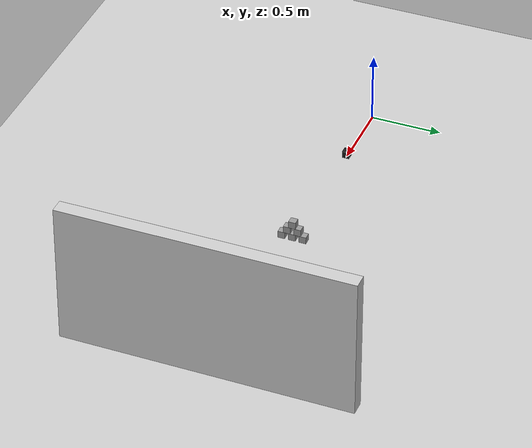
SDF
<?xml version="1.0"?>
<sdf version="1.9">
  <world name="ign_moveit2_follow_target_world">

    <!-- Physics -->
    <plugin filename="ignition-gazebo-physics-system" name="ignition::gazebo::systems::Physics">
      <engine>
        <filename>ignition-physics-dartsim-plugin</filename>
      </engine>
      <dart>
        <collision_detector>bullet</collision_detector>
      </dart>
    </plugin>
    <physics name="physics_config" type="dart">
      <max_step_size>0.002</max_step_size>
      <real_time_factor>1.0</real_time_factor>
    </physics>

    <!-- Scene -->
    <plugin filename="ignition-gazebo-scene-broadcaster-system" name="ignition::gazebo::systems::SceneBroadcaster">
    </plugin>
    <scene>
      <ambient>0.8 0.8 0.8</ambient>
      <grid>false</grid>
    </scene>

    <!-- User Commands (transform control) -->
    <plugin filename="ignition-gazebo-user-commands-system" name="ignition::gazebo::systems::UserCommands">
    </plugin>

    <!-- Illumination -->
    <light type="directional" name="sun">
      <cast_shadows>true</cast_shadows>
      <pose>0 0 10 0 0 0</pose>
      <diffuse>0.8 0.8 0.8 1</diffuse>
      <specular>0.2 0.2 0.2 1</specular>
      <attenuation>
        <range>1000</range>
        <constant>0.9</constant>
        <linear>0.01</linear>
        <quadratic>0.001</quadratic>
      </attenuation>
      <direction>-0.3 0.3 -0.9</direction>
    </light>

    <!-- Models -->
    <!-- Ground -->
    <model name="ground_plane">
      <pose>0.5 0 0 0 0 0</pose>
      <static>true</static>
      <link name="ground_plane_link">
        <collision name="ground_plane_collision">
          <pose>0 0 -0.05 0 0 0</pose>
          <geometry>
            <box>
              <size>5 2 0.1</size>
            </box>
          </geometry>
        </collision>
        <visual name="ground_plane_visual">
          <geometry>
            <plane>
              <normal>0 0 1</normal>
              <size>5 2</size>
            </plane>
          </geometry>
          <material>
            <diffuse>0.8 0.8 0.8 1</diffuse>
            <specular>0.8 0.8 0.8 1</specular>
          </material>
        </visual>
      </link>
    </model>
    <model name="underground_plane">
      <pose>0.5 0 -10.0 0 0 0</pose>
      <static>true</static>
      <link name="underground_plane_link">
        <collision name="underground_plane_collision">
          <geometry>
            <plane>
              <normal>0 0 1</normal>
            </plane>
          </geometry>
        </collision>
      </link>
    </model>

    <!-- Blockade -->
    <model name="blockade">
      <pose>2.95 0 0.5 0 0 0</pose>
      <static>true</static>
      <link name="blockade_link">
        <collision name="blockade_collision">
          <geometry>
            <box>
              <size>0.1 2.0 1.0</size>
            </box>
          </geometry>
        </collision>
        <visual name="blockade_visual">
          <geometry>
            <box>
              <size>0.1 2.0 1.0</size>
            </box>
          </geometry>
          <material>
            <diffuse>0.8 0.8 0.8 1</diffuse>
            <specular>0.8 0.8 0.8 1</specular>
          </material>
        </visual>
      </link>
    </model>

    <!-- Object to throw -->
    <model name="throwing_object">
      <pose>0.5 0 0.025 1.5707963 0 0</pose>
      <link name="throwing_object_link">
        <inertial>
          <inertia>
            <ixx>0.00025</ixx>
            <ixy>0.0</ixy>
            <ixz>0.0</ixz>
            <iyy>0.00025</iyy>
            <iyz>0.0</iyz>
            <izz>0.00025</izz>
          </inertia>
          <mass>0.6</mass>
        </inertial>
        <collision name="throwing_object_collision">
          <geometry>
            <box>
              <size>0.05 0.05 0.05</size>
            </box>
          </geometry>
          <surface>
            <friction>
              <ode>
                <mu>2.0</mu>
                <mu2>2.0</mu2>
              </ode>
            </friction>
          </surface>
        </collision>
        <visual name="throwing_object_visual">
          <geometry>
            <box>
              <size>0.05 0.05 0.05</size>
            </box>
          </geometry>
          <material>
            <diffuse>0.1 0.1 0.1 1</diffuse>
            <specular>0.4 0.4 0.4 1</specular>
          </material>
        </visual>
      </link>
    </model>

    <!-- Target pyramid -->
    <!-- Re-enable boxes if you want a larger pyramid -->

    <model name="pyramid_box1">
      <pose>1.5 -0.075 0.025 0 0 0</pose>
      <link name="pyramid_box1_link">
        <inertial>
          <inertia>
            <ixx>0.00005</ixx>
            <ixy>0.0</ixy>
            <ixz>0.0</ixz>
            <iyy>0.00005</iyy>
            <iyz>0.0</iyz>
            <izz>0.00005</izz>
          </inertia>
          <mass>0.12</mass>
        </inertial>
        <collision name="pyramid_box1_collision">
          <geometry>
            <box>
              <size>0.05 0.05 0.05</size>
            </box>
          </geometry>
        </collision>
        <visual name="pyramid_box1_visual">
          <geometry>
            <box>
              <size>0.05 0.05 0.05</size>
            </box>
          </geometry>
          <material>
            <diffuse>0.6 0.6 0.6 1</diffuse>
            <specular>0.2 0.2 0.2 1</specular>
          </material>
        </visual>
      </link>
    </model>

    <model name="pyramid_box2">
      <pose>1.5 0 0.025 0 0 0</pose>
      <link name="pyramid_box2_link">
        <inertial>
          <inertia>
            <ixx>0.00005</ixx>
            <ixy>0.0</ixy>
            <ixz>0.0</ixz>
            <iyy>0.00005</iyy>
            <iyz>0.0</iyz>
            <izz>0.00005</izz>
          </inertia>
          <mass>0.12</mass>
        </inertial>
        <collision name="pyramid_box2_collision">
          <geometry>
            <box>
              <size>0.05 0.05 0.05</size>
            </box>
          </geometry>
        </collision>
        <visual name="pyramid_box2_visual">
          <geometry>
            <box>
              <size>0.05 0.05 0.05</size>
            </box>
          </geometry>
          <material>
            <diffuse>0.6 0.6 0.6 1</diffuse>
            <specular>0.2 0.2 0.2 1</specular>
          </material>
        </visual>
      </link>
    </model>

    <model name="pyramid_box3">
      <pose>1.5 0.075 0.025 0 0 0</pose>
      <link name="pyramid_box3_link">
        <inertial>
          <inertia>
            <ixx>0.00005</ixx>
            <ixy>0.0</ixy>
            <ixz>0.0</ixz>
            <iyy>0.00005</iyy>
            <iyz>0.0</iyz>
            <izz>0.00005</izz>
          </inertia>
          <mass>0.12</mass>
        </inertial>
        <collision name="pyramid_box3_collision">
          <geometry>
            <box>
              <size>0.05 0.05 0.05</size>
            </box>
          </geometry>
        </collision>
        <visual name="pyramid_box3_visual">
          <geometry>
            <box>
              <size>0.05 0.05 0.05</size>
            </box>
          </geometry>
          <material>
            <diffuse>0.6 0.6 0.6 1</diffuse>
            <specular>0.2 0.2 0.2 1</specular>
          </material>
        </visual>
      </link>
    </model>

    <model name="pyramid_box6">
      <pose>1.5 -0.0375 0.075 0 0 0</pose>
      <link name="pyramid_box6_link">
        <inertial>
          <inertia>
            <ixx>0.00005</ixx>
            <ixy>0.0</ixy>
            <ixz>0.0</ixz>
            <iyy>0.00005</iyy>
            <iyz>0.0</iyz>
            <izz>0.00005</izz>
          </inertia>
          <mass>0.12</mass>
        </inertial>
        <collision name="pyramid_box6_collision">
          <geometry>
            <box>
              <size>0.05 0.05 0.05</size>
            </box>
          </geometry>
        </collision>
        <visual name="pyramid_box6_visual">
          <geometry>
            <box>
              <size>0.05 0.05 0.05</size>
            </box>
          </geometry>
          <material>
            <diffuse>0.6 0.6 0.6 1</diffuse>
            <specular>0.2 0.2 0.2 1</specular>
          </material>
        </visual>
      </link>
    </model>

    <model name="pyramid_box7">
      <pose>1.5 0.0375 0.075 0 0 0</pose>
      <link name="pyramid_box7_link">
        <inertial>
          <inertia>
            <ixx>0.00005</ixx>
            <ixy>0.0</ixy>
            <ixz>0.0</ixz>
            <iyy>0.00005</iyy>
            <iyz>0.0</iyz>
            <izz>0.00005</izz>
          </inertia>
          <mass>0.12</mass>
        </inertial>
        <collision name="pyramid_box7_collision">
          <geometry>
            <box>
              <size>0.05 0.05 0.05</size>
            </box>
          </geometry>
        </collision>
        <visual name="pyramid_box7_visual">
          <geometry>
            <box>
              <size>0.05 0.05 0.05</size>
            </box>
          </geometry>
          <material>
            <diffuse>0.6 0.6 0.6 1</diffuse>
            <specular>0.2 0.2 0.2 1</specular>
          </material>
        </visual>
      </link>
    </model>

    <model name="pyramid_box10">
      <pose>1.5 0 0.125 0 0 0</pose>
      <link name="pyramid_box10_link">
        <inertial>
          <inertia>
            <ixx>0.00005</ixx>
            <ixy>0.0</ixy>
            <ixz>0.0</ixz>
            <iyy>0.00005</iyy>
            <iyz>0.0</iyz>
            <izz>0.00005</izz>
          </inertia>
          <mass>0.12</mass>
        </inertial>
        <collision name="pyramid_box10_collision">
          <geometry>
            <box>
              <size>0.05 0.05 0.05</size>
            </box>
          </geometry>
        </collision>
        <visual name="pyramid_box10_visual">
          <geometry>
            <box>
              <size>0.05 0.05 0.05</size>
            </box>
          </geometry>
          <material>
            <diffuse>0.6 0.6 0.6 1</diffuse>
            <specular>0.2 0.2 0.2 1</specular>
          </material>
        </visual>
      </link>
    </model>

  </world>
</sdf>
